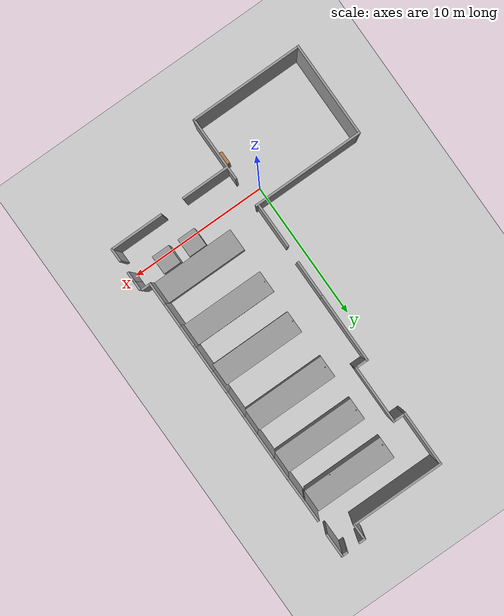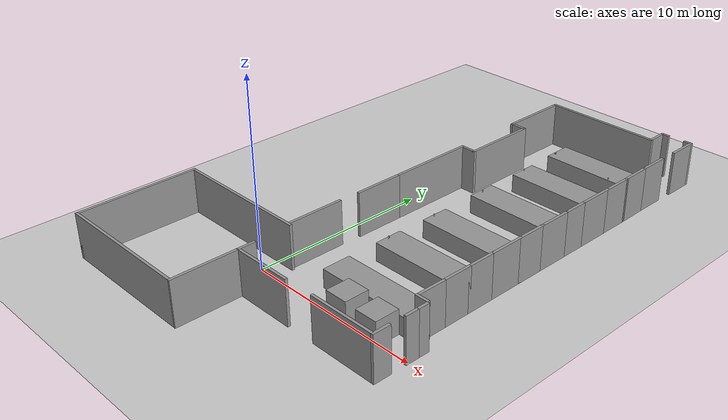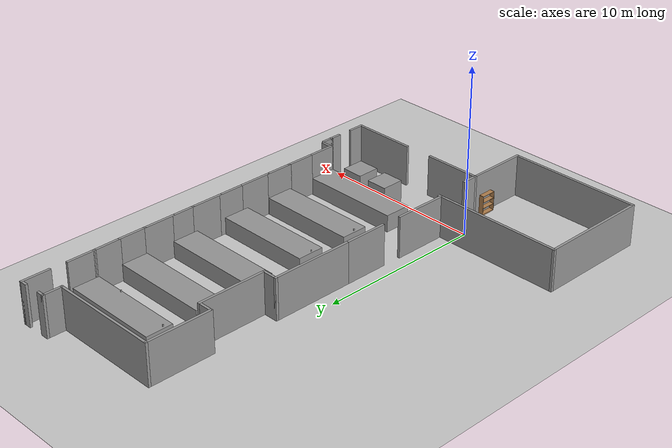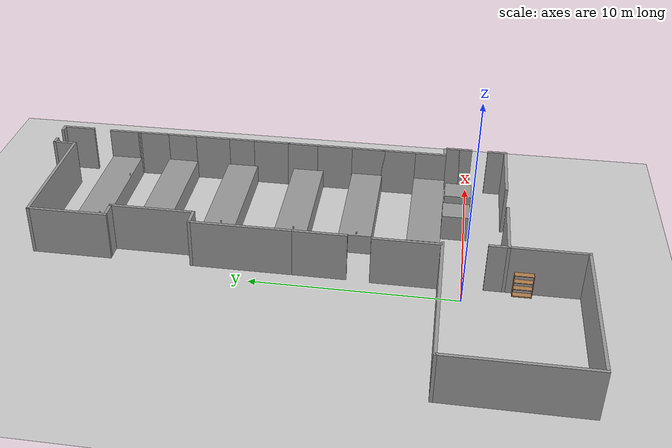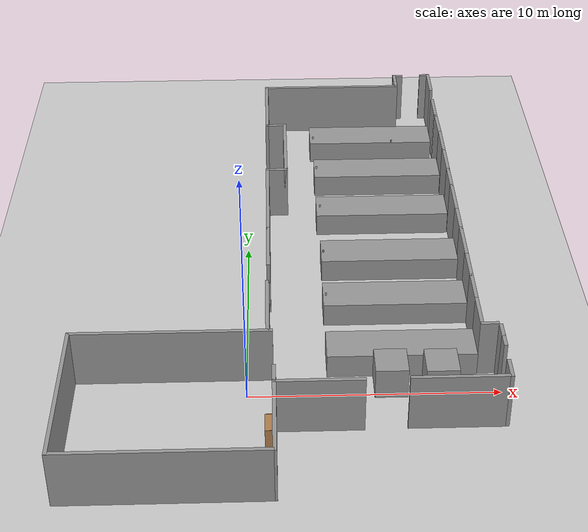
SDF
<sdf version="1.6">
 <world name="default">
  <light name="sun" type="directional">
   <pose>0 0 10 0 -0 0</pose>
   <diffuse>0.8 0.8 0.8 1</diffuse>
   <specular>0.2 0.2 0.2 1</specular>
   <attenuation>
    <range>1000</range>
    <constant>0.9</constant>
    <linear>0.01</linear>
    <quadratic>0.001</quadratic>
   </attenuation>
   <direction>-0.5 0.1 -0.9</direction>
  </light>
  <model name="ground_plane">
   <static>1</static>
   <link name="link">
    <collision name="collision">
     <geometry><plane><normal>0 0 1</normal><size>100 100</size></plane></geometry>
     <surface>
      <contact><collide_bitmask>65535</collide_bitmask></contact>
      <friction><ode><mu>100</mu><mu2>50</mu2></ode></friction>
     </surface>
    </collision>
    <visual name="visual">
     <cast_shadows>0</cast_shadows>
     <geometry><plane><normal>0 0 1</normal><size>100 100</size></plane></geometry>
     <material>
      <script><uri>file://media/materials/scripts/gazebo.material</uri><name>Gazebo/Grey</name></script>
     </material>
    </visual>
   </link>
  </model>
  <gravity>0 0 -9.8</gravity>
  <magnetic_field>6e-06 2.3e-05 -4.2e-05</magnetic_field>
  <atmosphere type="adiabatic"/>
  <physics name="default_physics" default="0" type="ode">
   <max_step_size>0.001</max_step_size>
   <real_time_factor>1</real_time_factor>
   <real_time_update_rate>1000</real_time_update_rate>
  </physics>
  <scene><ambient>0.4 0.4 0.4 1</ambient><background>0.7 0.7 0.7 1</background><shadows>1</shadows></scene>
  <audio><device>default</device></audio>
  <spherical_coordinates>
   <surface_model>EARTH_WGS84</surface_model>
   <latitude_deg>0</latitude_deg>
   <longitude_deg>0</longitude_deg>
   <elevation>0</elevation>
   <heading_deg>0</heading_deg>
  </spherical_coordinates>
  <model name="ecst_thermal_lab_frame_update">
   <pose>1.54422 8.26526 0 0 -0 0</pose>
   <link name="Wall_0">
    <collision name="Wall_0_Collision">
     <geometry><box><size>8 0.15 2.5</size></box></geometry>
     <pose>0 0 1.25 0 -0 0</pose>
    </collision>
    <visual name="Wall_0_Visual">
     <pose>0 0 1.25 0 -0 0</pose>
     <geometry><box><size>8 0.15 2.5</size></box></geometry>
     <material>
      <script><uri>file://media/materials/scripts/gazebo.material</uri><name>Gazebo/Grey</name></script>
      <ambient>0.333333 0.341176 0.32549 1</ambient>
     </material>
     <meta><layer>0</layer></meta>
    </visual>
    <pose>-4.49229 -7.18663 0 0 -0 3.14159</pose>
   </link>
   <link name="Wall_1">
    <collision name="Wall_1_Collision">
     <geometry><box><size>6.75 0.15 2.5</size></box></geometry>
     <pose>0 0 1.25 0 -0 0</pose>
    </collision>
    <visual name="Wall_1_Visual">
     <pose>0 0 1.25 0 -0 0</pose>
     <geometry><box><size>6.75 0.15 2.5</size></box></geometry>
     <material>
      <script><uri>file://media/materials/scripts/gazebo.material</uri><name>Gazebo/Grey</name></script>
      <ambient>0.333333 0.341176 0.32549 1</ambient>
     </material>
     <meta><layer>0</layer></meta>
    </visual>
    <pose>-8.41729 -10.4866 0 0 -0 -1.5708</pose>
   </link>
   <link name="Wall_10">
    <collision name="Wall_10_Collision">
     <geometry><box><size>3.75 0.15 2.5</size></box></geometry>
     <pose>0 0 1.25 0 -0 0</pose>
    </collision>
    <visual name="Wall_10_Visual">
     <pose>0 0 1.25 0 -0 0</pose>
     <geometry><box><size>3.75 0.15 2.5</size></box></geometry>
     <material>
      <script><uri>file://media/materials/scripts/gazebo.material</uri><name>Gazebo/Grey</name></script>
      <ambient>0.333333 0.341176 0.32549 1</ambient>
     </material>
     <meta><layer>0</layer></meta>
    </visual>
    <pose>6.47111 -10.1498 0 0 -0 0</pose>
   </link>
   <link name="Wall_12">
    <collision name="Wall_12_Collision">
     <geometry><box><size>0.75 0.15 2.5</size></box></geometry>
     <pose>0 0 1.25 0 -0 0</pose>
    </collision>
    <visual name="Wall_12_Visual">
     <pose>0 0 1.25 0 -0 0</pose>
     <geometry><box><size>0.75 0.15 2.5</size></box></geometry>
     <material>
      <script><uri>file://media/materials/scripts/gazebo.material</uri><name>Gazebo/Grey</name></script>
      <ambient>0.333333 0.341176 0.32549 1</ambient>
     </material>
     <meta><layer>0</layer></meta>
    </visual>
    <pose>8.41729 -8.04223 0 0 -0 -1.5708</pose>
   </link>
   <link name="Wall_17">
    <collision name="Wall_17_Collision">
     <geometry><box><size>1 0.15 2.5</size></box></geometry>
     <pose>0 0 1.25 0 -0 0</pose>
    </collision>
    <visual name="Wall_17_Visual">
     <pose>0 0 1.25 0 -0 0</pose>
     <geometry><box><size>1 0.15 2.5</size></box></geometry>
     <material>
      <script><uri>file://media/materials/scripts/gazebo.material</uri><name>Gazebo/Grey</name></script>
      <ambient>0.333333 0.341176 0.32549 1</ambient>
     </material>
     <meta><layer>0</layer></meta>
    </visual>
    <pose>8.39378 -9.72627 0 0 -0 -1.5708</pose>
   </link>
   <link name="Wall_2">
    <collision name="Wall_2_Collision">
     <geometry><box><size>8 0.15 2.5</size></box></geometry>
     <pose>0 0 1.25 0 -0 0</pose>
    </collision>
    <visual name="Wall_2_Visual">
     <pose>0 0 1.25 0 -0 0</pose>
     <geometry><box><size>8 0.15 2.5</size></box></geometry>
     <material>
      <script><uri>file://media/materials/scripts/gazebo.material</uri><name>Gazebo/Grey</name></script>
      <ambient>0.333333 0.341176 0.32549 1</ambient>
     </material>
     <meta><layer>0</layer></meta>
    </visual>
    <pose>-4.49229 -13.7866 0 0 -0 0</pose>
   </link>
   <link name="Wall_24">
    <collision name="Wall_24_Collision">
     <geometry><box><size>0.75 0.15 2.5</size></box></geometry>
     <pose>0 0 1.25 0 -0 0</pose>
    </collision>
    <visual name="Wall_24_Visual">
     <pose>0 0 1.25 0 -0 0</pose>
     <geometry><box><size>0.75 0.15 2.5</size></box></geometry>
     <material>
      <script><uri>file://media/materials/scripts/gazebo.material</uri><name>Gazebo/Grey</name></script>
      <ambient>0.333333 0.341176 0.32549 1</ambient>
     </material>
     <meta><layer>0</layer></meta>
    </visual>
    <pose>8.41729 -7.44223 0 0 -0 1.5708</pose>
   </link>
   <link name="Wall_39">
    <collision name="Wall_39_Collision">
     <geometry><box><size>1.75 0.15 2.5</size></box></geometry>
     <pose>0 0 1.25 0 -0 0</pose>
    </collision>
    <visual name="Wall_39_Visual">
     <pose>0 0 1.25 0 -0 0</pose>
     <geometry><box><size>1.75 0.15 2.5</size></box></geometry>
     <material>
      <script><uri>file://media/materials/scripts/gazebo.material</uri><name>Gazebo/Grey</name></script>
      <ambient>1 1 1 1</ambient>
     </material>
     <meta><layer>0</layer></meta>
    </visual>
    <pose>7.69144 -4.60777 0 0 -0 -1.5708</pose>
   </link>
   <link name="Wall_40">
    <collision name="Wall_40_Collision">
     <geometry><box><size>1.75 0.15 2.5</size></box></geometry>
     <pose>0 0 1.25 0 -0 0</pose>
    </collision>
    <visual name="Wall_40_Visual">
     <pose>0 0 1.25 0 -0 0</pose>
     <geometry><box><size>1.75 0.15 2.5</size></box></geometry>
     <material>
      <script><uri>file://media/materials/scripts/gazebo.material</uri><name>Gazebo/Grey</name></script>
      <ambient>0.333333 0.341176 0.32549 1</ambient>
     </material>
     <meta><layer>0</layer></meta>
    </visual>
    <pose>7.69144 -6.20777 0 0 -0 -1.5708</pose>
   </link>
   <link name="Wall_42">
    <collision name="Wall_42_Collision">
     <geometry><box><size>1.75 0.15 2.5</size></box></geometry>
     <pose>0 0 1.25 0 -0 0</pose>
    </collision>
    <visual name="Wall_42_Visual">
     <pose>0 0 1.25 0 -0 0</pose>
     <geometry><box><size>1.75 0.15 2.5</size></box></geometry>
     <material>
      <script><uri>file://media/materials/scripts/gazebo.material</uri><name>Gazebo/Grey</name></script>
      <ambient>0.333333 0.341176 0.32549 1</ambient>
     </material>
     <meta><layer>0</layer></meta>
    </visual>
    <pose>7.69144 -3.00777 0 0 -0 1.5708</pose>
   </link>
   <link name="Wall_43">
    <collision name="Wall_43_Collision">
     <geometry><box><size>2 0.15 2.5</size></box></geometry>
     <pose>0 0 1.25 0 -0 0</pose>
    </collision>
    <visual name="Wall_43_Visual">
     <pose>0 0 1.25 0 -0 0</pose>
     <geometry><box><size>2 0.15 2.5</size></box></geometry>
     <material>
      <script><uri>file://media/materials/scripts/gazebo.material</uri><name>Gazebo/Grey</name></script>
      <ambient>1 1 1 1</ambient>
     </material>
     <meta><layer>0</layer></meta>
    </visual>
    <pose>7.69144 -1.28277 0 0 -0 1.5708</pose>
   </link>
   <link name="Wall_44">
    <collision name="Wall_44_Collision">
     <geometry><box><size>1.75 0.15 2.5</size></box></geometry>
     <pose>0 0 1.25 0 -0 0</pose>
    </collision>
    <visual name="Wall_44_Visual">
     <pose>0 0 1.25 0 -0 0</pose>
     <geometry><box><size>1.75 0.15 2.5</size></box></geometry>
     <material>
      <script><uri>file://media/materials/scripts/gazebo.material</uri><name>Gazebo/Grey</name></script>
      <ambient>0.333333 0.341176 0.32549 1</ambient>
     </material>
     <meta><layer>0</layer></meta>
    </visual>
    <pose>7.69144 0.442234 0 0 -0 1.5708</pose>
   </link>
   <link name="Wall_46">
    <collision name="Wall_46_Collision">
     <geometry><box><size>2 0.15 2.5</size></box></geometry>
     <pose>0 0 1.25 0 -0 0</pose>
    </collision>
    <visual name="Wall_46_Visual">
     <pose>0 0 1.25 0 -0 0</pose>
     <geometry><box><size>2 0.15 2.5</size></box></geometry>
     <material>
      <script><uri>file://media/materials/scripts/gazebo.material</uri><name>Gazebo/Grey</name></script>
      <ambient>1 1 1 1</ambient>
     </material>
     <meta><layer>0</layer></meta>
    </visual>
    <pose>7.69144 2.16723 0 0 -0 1.5708</pose>
   </link>
   <link name="Wall_47">
    <collision name="Wall_47_Collision">
     <geometry><box><size>1.5 0.15 2.5</size></box></geometry>
     <pose>0 0 1.25 0 -0 0</pose>
    </collision>
    <visual name="Wall_47_Visual">
     <pose>0 0 1.25 0 -0 0</pose>
     <geometry><box><size>1.5 0.15 2.5</size></box></geometry>
     <material>
      <script><uri>file://media/materials/scripts/gazebo.material</uri><name>Gazebo/Grey</name></script>
      <ambient>0.333333 0.341176 0.32549 1</ambient>
     </material>
     <meta><layer>0</layer></meta>
    </visual>
    <pose>7.69144 3.76723 0 0 -0 1.5708</pose>
   </link>
   <link name="Wall_48">
    <collision name="Wall_48_Collision">
     <geometry><box><size>2 0.15 2.5</size></box></geometry>
     <pose>0 0 1.25 0 -0 0</pose>
    </collision>
    <visual name="Wall_48_Visual">
     <pose>0 0 1.25 0 -0 0</pose>
     <geometry><box><size>2 0.15 2.5</size></box></geometry>
     <material>
      <script><uri>file://media/materials/scripts/gazebo.material</uri><name>Gazebo/Grey</name></script>
      <ambient>1 1 1 1</ambient>
     </material>
     <meta><layer>0</layer></meta>
    </visual>
    <pose>7.69144 5.36723 0 0 -0 1.5708</pose>
   </link>
   <link name="Wall_49">
    <collision name="Wall_49_Collision">
     <geometry><box><size>1.75 0.15 2.5</size></box></geometry>
     <pose>0 0 1.25 0 -0 0</pose>
    </collision>
    <visual name="Wall_49_Visual">
     <pose>0 0 1.25 0 -0 0</pose>
     <geometry><box><size>1.75 0.15 2.5</size></box></geometry>
     <material>
      <script><uri>file://media/materials/scripts/gazebo.material</uri><name>Gazebo/Grey</name></script>
      <ambient>0.333333 0.341176 0.32549 1</ambient>
     </material>
     <meta><layer>0</layer></meta>
    </visual>
    <pose>7.69144 7.09223 0 0 -0 1.5708</pose>
   </link>
   <link name="Wall_5">
    <collision name="Wall_5_Collision">
     <geometry><box><size>1 0.15 2.5</size></box></geometry>
     <pose>0 0 1.25 0 -0 0</pose>
    </collision>
    <visual name="Wall_5_Visual">
     <pose>0 0 1.25 0 -0 0</pose>
     <geometry><box><size>1 0.15 2.5</size></box></geometry>
     <material>
      <script><uri>file://media/materials/scripts/gazebo.material</uri><name>Gazebo/Grey</name></script>
      <ambient>0.333333 0.341176 0.32549 1</ambient>
     </material>
     <meta><layer>0</layer></meta>
    </visual>
    <pose>-0.467362 -9.76165 0 0 -0 1.57098</pose>
   </link>
   <link name="Wall_50">
    <collision name="Wall_50_Collision">
     <geometry><box><size>1.79027 0.15 2.5</size></box></geometry>
     <pose>0 0 1.25 0 -0 0</pose>
    </collision>
    <visual name="Wall_50_Visual">
     <pose>0 0 1.25 0 -0 0</pose>
     <geometry><box><size>1.79027 0.15 2.5</size></box></geometry>
     <material>
      <script><uri>file://media/materials/scripts/gazebo.material</uri><name>Gazebo/Grey</name></script>
      <ambient>1 1 1 1</ambient>
     </material>
     <meta><layer>0</layer></meta>
    </visual>
    <pose>7.67644 8.71223 0 0 -0 1.58909</pose>
   </link>
   <link name="Wall_51">
    <collision name="Wall_51_Collision">
     <geometry><box><size>1.74 0.15 2.5</size></box></geometry>
     <pose>0 0 1.25 0 -0 0</pose>
    </collision>
    <visual name="Wall_51_Visual">
     <pose>0 0 1.25 0 -0 0</pose>
     <geometry><box><size>1.74 0.15 2.5</size></box></geometry>
     <material>
      <script><uri>file://media/materials/scripts/gazebo.material</uri><name>Gazebo/Grey</name></script>
      <ambient>0.333333 0.341176 0.32549 1</ambient>
     </material>
     <meta><layer>0</layer></meta>
    </visual>
    <pose>7.66144 10.3172 0 0 -0 1.5708</pose>
   </link>
   <link name="Wall_55">
    <collision name="Wall_55_Collision">
     <geometry><box><size>1.75 0.15 2.5</size></box></geometry>
     <pose>0 0 1.25 0 -0 0</pose>
    </collision>
    <visual name="Wall_55_Visual">
     <pose>0 0 1.25 0 -0 0</pose>
     <geometry><box><size>1.75 0.15 2.5</size></box></geometry>
     <material>
      <script><uri>file://media/materials/scripts/gazebo.material</uri><name>Gazebo/Grey</name></script>
      <ambient>0.333333 0.341176 0.32549 1</ambient>
     </material>
     <meta><layer>0</layer></meta>
    </visual>
    <pose>7.7071 12.9866 0 0 -0 1.5708</pose>
   </link>
   <link name="Wall_56">
    <collision name="Wall_56_Collision">
     <geometry><box><size>0.5 0.15 2.5</size></box></geometry>
     <pose>0 0 1.25 0 -0 0</pose>
    </collision>
    <visual name="Wall_56_Visual">
     <pose>0 0 1.25 0 -0 0</pose>
     <geometry><box><size>0.5 0.15 2.5</size></box></geometry>
     <material>
      <script><uri>file://media/materials/scripts/gazebo.material</uri><name>Gazebo/Grey</name></script>
      <ambient>0.333333 0.341176 0.32549 1</ambient>
     </material>
     <meta><layer>0</layer></meta>
    </visual>
    <pose>7.5321 13.7866 0 0 -0 3.14159</pose>
   </link>
   <link name="Wall_58">
    <collision name="Wall_58_Collision">
     <geometry><box><size>0.5 0.15 2.5</size></box></geometry>
     <pose>0 0 1.25 0 -0 0</pose>
    </collision>
    <visual name="Wall_58_Visual">
     <pose>0 0 1.25 0 -0 0</pose>
     <geometry><box><size>0.5 0.15 2.5</size></box></geometry>
     <material>
      <script><uri>file://media/materials/scripts/gazebo.material</uri><name>Gazebo/Grey</name></script>
      <ambient>0.333333 0.341176 0.32549 1</ambient>
     </material>
     <meta><layer>0</layer></meta>
    </visual>
    <pose>6.1329 13.7379 0 0 -0 3.14159</pose>
   </link>
   <link name="Wall_59">
    <collision name="Wall_59_Collision">
     <geometry><box><size>1.25 0.15 2.5</size></box></geometry>
     <pose>0 0 1.25 0 -0 0</pose>
    </collision>
    <visual name="Wall_59_Visual">
     <pose>0 0 1.25 0 -0 0</pose>
     <geometry><box><size>1.25 0.15 2.5</size></box></geometry>
     <material>
      <script><uri>file://media/materials/scripts/gazebo.material</uri><name>Gazebo/Grey</name></script>
      <ambient>0.333333 0.341176 0.32549 1</ambient>
     </material>
     <meta><layer>0</layer></meta>
    </visual>
    <pose>5.9579 13.1879 0 0 -0 -1.5708</pose>
   </link>
   <link name="Wall_60">
    <collision name="Wall_60_Collision">
     <geometry><box><size>6.75 0.15 2.5</size></box></geometry>
     <pose>0 0 1.25 0 -0 0</pose>
    </collision>
    <visual name="Wall_60_Visual">
     <pose>0 0 1.25 0 -0 0</pose>
     <geometry><box><size>6.75 0.15 2.5</size></box></geometry>
     <material>
      <script><uri>file://media/materials/scripts/gazebo.material</uri><name>Gazebo/Grey</name></script>
      <ambient>0.333333 0.341176 0.32549 1</ambient>
     </material>
     <meta><layer>0</layer></meta>
    </visual>
    <pose>2.6579 12.6379 0 0 -0 3.14159</pose>
   </link>
   <link name="Wall_61">
    <collision name="Wall_61_Collision">
     <geometry><box><size>4 0.15 2.5</size></box></geometry>
     <pose>0 0 1.25 0 -0 0</pose>
    </collision>
    <visual name="Wall_61_Visual">
     <pose>0 0 1.25 0 -0 0</pose>
     <geometry><box><size>4 0.15 2.5</size></box></geometry>
     <material>
      <script><uri>file://media/materials/scripts/gazebo.material</uri><name>Gazebo/Grey</name></script>
      <ambient>0.333333 0.341176 0.32549 1</ambient>
     </material>
     <meta><layer>0</layer></meta>
    </visual>
    <pose>-0.642102 10.7129 0 0 -0 -1.5708</pose>
   </link>
   <link name="Wall_62">
    <collision name="Wall_62_Collision">
     <geometry><box><size>1 0.15 2.5</size></box></geometry>
     <pose>0 0 1.25 0 -0 0</pose>
    </collision>
    <visual name="Wall_62_Visual">
     <pose>0 0 1.25 0 -0 0</pose>
     <geometry><box><size>1 0.15 2.5</size></box></geometry>
     <material>
      <script><uri>file://media/materials/scripts/gazebo.material</uri><name>Gazebo/Grey</name></script>
      <ambient>0.333333 0.341176 0.32549 1</ambient>
     </material>
     <meta><layer>0</layer></meta>
    </visual>
    <pose>-0.217102 8.78792 0 0 -0 0</pose>
   </link>
   <link name="Wall_63">
    <collision name="Wall_63_Collision">
     <geometry><box><size>4.25 0.15 2.5</size></box></geometry>
     <pose>0 0 1.25 0 -0 0</pose>
    </collision>
    <visual name="Wall_63_Visual">
     <pose>0 0 1.25 0 -0 0</pose>
     <geometry><box><size>4.25 0.15 2.5</size></box></geometry>
     <material>
      <script><uri>file://media/materials/scripts/gazebo.material</uri><name>Gazebo/Grey</name></script>
      <ambient>0.333333 0.341176 0.32549 1</ambient>
     </material>
     <meta><layer>0</layer></meta>
    </visual>
    <pose>0.207898 6.73792 0 0 -0 -1.5708</pose>
   </link>
   <link name="Wall_64">
    <collision name="Wall_64_Collision">
     <geometry><box><size>1 0.15 2.5</size></box></geometry>
     <pose>0 0 1.25 0 -0 0</pose>
    </collision>
    <visual name="Wall_64_Visual">
     <pose>0 0 1.25 0 -0 0</pose>
     <geometry><box><size>1 0.15 2.5</size></box></geometry>
     <material>
      <script><uri>file://media/materials/scripts/gazebo.material</uri><name>Gazebo/Grey</name></script>
      <ambient>0.333333 0.341176 0.32549 1</ambient>
     </material>
     <meta><layer>0</layer></meta>
    </visual>
    <pose>-0.217102 4.68792 0 0 -0 3.14159</pose>
   </link>
   <link name="Wall_65">
    <collision name="Wall_65_Collision">
     <geometry><box><size>5 0.15 2.5</size></box></geometry>
     <pose>0 0 1.25 0 -0 0</pose>
    </collision>
    <visual name="Wall_65_Visual">
     <pose>0 0 1.25 0 -0 0</pose>
     <geometry><box><size>5 0.15 2.5</size></box></geometry>
     <material>
      <script><uri>file://media/materials/scripts/gazebo.material</uri><name>Gazebo/Grey</name></script>
      <ambient>0.333333 0.341176 0.32549 1</ambient>
     </material>
     <meta><layer>0</layer></meta>
    </visual>
    <pose>-0.642102 2.26292 0 0 -0 -1.5708</pose>
   </link>
   <link name="Wall_66">
    <collision name="Wall_66_Collision">
     <geometry><box><size>2.75 0.15 2.5</size></box></geometry>
     <pose>0 0 1.25 0 -0 0</pose>
    </collision>
    <visual name="Wall_66_Visual">
     <pose>0 0 1.25 0 -0 0</pose>
     <geometry><box><size>2.75 0.15 2.5</size></box></geometry>
     <material>
      <script><uri>file://media/materials/scripts/gazebo.material</uri><name>Gazebo/Grey</name></script>
      <ambient>0 0 0 1</ambient>
     </material>
     <meta><layer>0</layer></meta>
    </visual>
    <pose>-0.642102 -1.46208 0 0 -0 -1.5708</pose>
   </link>
   <link name="Wall_69">
    <collision name="Wall_69_Collision">
     <geometry><box><size>3.25 0.15 2.5</size></box></geometry>
     <pose>0 0 1.25 0 -0 0</pose>
    </collision>
    <visual name="Wall_69_Visual">
     <pose>0 0 1.25 0 -0 0</pose>
     <geometry><box><size>3.25 0.15 2.5</size></box></geometry>
     <material>
      <script><uri>file://media/materials/scripts/gazebo.material</uri><name>Gazebo/Grey</name></script>
      <ambient>0 0 0 1</ambient>
     </material>
     <meta><layer>0</layer></meta>
    </visual>
    <pose>-0.693895 -5.56583 0 0 -0 -1.5708</pose>
   </link>
   <link name="Wall_7">
    <collision name="Wall_7_Collision">
     <geometry><box><size>3.5 0.15 2.5</size></box></geometry>
     <pose>0 0 1.25 0 -0 0</pose>
    </collision>
    <visual name="Wall_7_Visual">
     <pose>0 0 1.25 0 -0 0</pose>
     <geometry><box><size>3.5 0.15 2.5</size></box></geometry>
     <material>
      <script><uri>file://media/materials/scripts/gazebo.material</uri><name>Gazebo/Grey</name></script>
      <ambient>0.333333 0.341176 0.32549 1</ambient>
     </material>
     <meta><layer>0</layer></meta>
    </visual>
    <pose>1.20764 -10.1867 0 0 -0 -1.4e-05</pose>
   </link>
   <link name="Wall_75">
    <collision name="Wall_75_Collision">
     <geometry><box><size>0.75 0.15 2.5</size></box></geometry>
     <pose>0 0 1.25 0 -0 0</pose>
    </collision>
    <visual name="Wall_75_Visual">
     <pose>0 0 1.25 0 -0 0</pose>
     <geometry><box><size>0.75 0.15 2.5</size></box></geometry>
     <material>
      <script><uri>file://media/materials/scripts/gazebo.material</uri><name>Gazebo/Grey</name></script>
      <ambient>0.333333 0.341176 0.32549 1</ambient>
     </material>
     <meta><layer>0</layer></meta>
    </visual>
    <pose>7.99144 -7.00777 0 0 -0 0</pose>
   </link>
   <link name="Wall_82">
    <collision name="Wall_82_Collision">
     <geometry><box><size>3.75 0.15 2.5</size></box></geometry>
     <pose>0 0 1.25 0 -0 0</pose>
    </collision>
    <visual name="Wall_82_Visual">
     <pose>0 0 1.25 0 -0 0</pose>
     <geometry><box><size>3.75 0.15 2.5</size></box></geometry>
     <material>
      <script><uri>file://media/materials/scripts/gazebo.material</uri><name>Gazebo/Grey</name></script>
      <ambient>0.333333 0.341176 0.32549 1</ambient>
     </material>
     <meta><layer>0</layer></meta>
    </visual>
    <pose>-0.467286 -11.9866 0 0 -0 -1.5708</pose>
   </link>
   <static>1</static>
  </model>
  <model name="Thermal_Lab_Table_2">
   <link name="link">
    <inertial>
     <mass>14.3937</mass>
     <inertia><ixx>5.77164</ixx><ixy>0</ixy><ixz>0</ixz><iyy>45.8633</iyy><iyz>0</iyz><izz>46.3266</izz></inertia>
    </inertial>
    <pose>-2.72392 0.469528 0.259904 0 -0 0</pose>
    <visual name="visual">
     <geometry><box><size>6.00195 1.61214 1.48755</size></box></geometry>
     <material>
      <script><name>Gazebo/Grey</name><uri>file://media/materials/scripts/gazebo.material</uri></script>
     </material>
    </visual>
    <collision name="collision">
     <geometry><box><size>6.00195 1.61214 1.48755</size></box></geometry>
     <surface>
      <friction>
       <ode><mu>1</mu><mu2>1</mu2><fdir1>0 0 0</fdir1><slip1>0</slip1><slip2>0</slip2></ode>
       <torsional>
        <coefficient>1</coefficient>
        <patch_radius>0</patch_radius>
        <surface_radius>0</surface_radius>
        <use_patch_radius>1</use_patch_radius>
        <ode><slip>0</slip></ode>
       </torsional>
      </friction>
      <bounce><restitution_coefficient>0</restitution_coefficient><threshold>1e+06</threshold></bounce>
      <contact>
       <collide_without_contact>0</collide_without_contact>
       <collide_without_contact_bitmask>1</collide_without_contact_bitmask>
       <collide_bitmask>1</collide_bitmask>
       <ode>
        <soft_cfm>0</soft_cfm>
        <soft_erp>0.2</soft_erp>
        <kp>1e+13</kp>
        <kd>1</kd>
        <max_vel>0.01</max_vel>
        <min_depth>0</min_depth>
       </ode>
       <bullet>
        <split_impulse>1</split_impulse>
        <split_impulse_penetration_threshold>-0.01</split_impulse_penetration_threshold>
        <soft_cfm>0</soft_cfm>
        <soft_erp>0.2</soft_erp>
        <kp>1e+13</kp>
        <kd>1</kd>
       </bullet>
      </contact>
     </surface>
    </collision>
   </link>
   <static>1</static>
   <pose>8.90167 1.50886 0 0 -0 0</pose>
  </model>
  <model name="Thermal_Lab_Table_2_0">
   <link name="link">
    <inertial>
     <mass>14.3937</mass>
     <inertia><ixx>5.77164</ixx><ixy>0</ixy><ixz>0</ixz><iyy>45.8633</iyy><iyz>0</iyz><izz>46.3266</izz></inertia>
    </inertial>
    <pose>-2.72392 0.469528 0.259904 0 -0 0</pose>
    <visual name="visual">
     <geometry><box><size>6.00195 1.61214 1.48755</size></box></geometry>
     <material>
      <script><name>Gazebo/Grey</name><uri>file://media/materials/scripts/gazebo.material</uri></script>
     </material>
    </visual>
    <collision name="collision">
     <geometry><box><size>6.00195 1.61214 1.48755</size></box></geometry>
     <surface>
      <friction>
       <ode><mu>1</mu><mu2>1</mu2><fdir1>0 0 0</fdir1><slip1>0</slip1><slip2>0</slip2></ode>
       <torsional>
        <coefficient>1</coefficient>
        <patch_radius>0</patch_radius>
        <surface_radius>0</surface_radius>
        <use_patch_radius>1</use_patch_radius>
        <ode><slip>0</slip></ode>
       </torsional>
      </friction>
      <bounce><restitution_coefficient>0</restitution_coefficient><threshold>1e+06</threshold></bounce>
      <contact>
       <collide_without_contact>0</collide_without_contact>
       <collide_without_contact_bitmask>1</collide_without_contact_bitmask>
       <collide_bitmask>1</collide_bitmask>
       <ode>
        <soft_cfm>0</soft_cfm>
        <soft_erp>0.2</soft_erp>
        <kp>1e+13</kp>
        <kd>1</kd>
        <max_vel>0.01</max_vel>
        <min_depth>0</min_depth>
       </ode>
       <bullet>
        <split_impulse>1</split_impulse>
        <split_impulse_penetration_threshold>-0.01</split_impulse_penetration_threshold>
        <soft_cfm>0</soft_cfm>
        <soft_erp>0.2</soft_erp>
        <kp>1e+13</kp>
        <kd>1</kd>
       </bullet>
      </contact>
     </surface>
    </collision>
   </link>
   <static>1</static>
   <pose>8.89859 4.82939 0 0 -0 0</pose>
  </model>
  <model name="Thermal_Lab_Table_2_1">
   <link name="link">
    <inertial>
     <mass>14.3937</mass>
     <inertia><ixx>5.77164</ixx><ixy>0</ixy><ixz>0</ixz><iyy>45.8633</iyy><iyz>0</iyz><izz>46.3266</izz></inertia>
    </inertial>
    <pose>-2.72392 0.469528 0.259904 0 -0 0</pose>
    <visual name="visual">
     <geometry><box><size>6.00195 1.61214 1.48755</size></box></geometry>
     <material>
      <script><name>Gazebo/Grey</name><uri>file://media/materials/scripts/gazebo.material</uri></script>
     </material>
    </visual>
    <collision name="collision">
     <geometry><box><size>6.00195 1.61214 1.48755</size></box></geometry>
     <surface>
      <friction>
       <ode><mu>1</mu><mu2>1</mu2><fdir1>0 0 0</fdir1><slip1>0</slip1><slip2>0</slip2></ode>
       <torsional>
        <coefficient>1</coefficient>
        <patch_radius>0</patch_radius>
        <surface_radius>0</surface_radius>
        <use_patch_radius>1</use_patch_radius>
        <ode><slip>0</slip></ode>
       </torsional>
      </friction>
      <bounce><restitution_coefficient>0</restitution_coefficient><threshold>1e+06</threshold></bounce>
      <contact>
       <collide_without_contact>0</collide_without_contact>
       <collide_without_contact_bitmask>1</collide_without_contact_bitmask>
       <collide_bitmask>1</collide_bitmask>
       <ode>
        <soft_cfm>0</soft_cfm>
        <soft_erp>0.2</soft_erp>
        <kp>1e+13</kp>
        <kd>1</kd>
        <max_vel>0.01</max_vel>
        <min_depth>0</min_depth>
       </ode>
       <bullet>
        <split_impulse>1</split_impulse>
        <split_impulse_penetration_threshold>-0.01</split_impulse_penetration_threshold>
        <soft_cfm>0</soft_cfm>
        <soft_erp>0.2</soft_erp>
        <kp>1e+13</kp>
        <kd>1</kd>
       </bullet>
      </contact>
     </surface>
    </collision>
   </link>
   <static>1</static>
   <pose>8.93333 7.99657 0 0 -0 0</pose>
  </model>
  <model name="Thermal_Lab_Table_2_2">
   <link name="link">
    <inertial>
     <mass>14.3937</mass>
     <inertia><ixx>5.77164</ixx><ixy>0</ixy><ixz>0</ixz><iyy>45.8633</iyy><iyz>0</iyz><izz>46.3266</izz></inertia>
    </inertial>
    <pose>-2.72392 0.469528 0.259904 0 -0 0</pose>
    <visual name="visual">
     <geometry><box><size>6.00195 1.61214 1.48755</size></box></geometry>
     <material>
      <script><name>Gazebo/Grey</name><uri>file://media/materials/scripts/gazebo.material</uri></script>
     </material>
    </visual>
    <collision name="collision">
     <geometry><box><size>6.00195 1.61214 1.48755</size></box></geometry>
     <surface>
      <friction>
       <ode><mu>1</mu><mu2>1</mu2><fdir1>0 0 0</fdir1><slip1>0</slip1><slip2>0</slip2></ode>
       <torsional>
        <coefficient>1</coefficient>
        <patch_radius>0</patch_radius>
        <surface_radius>0</surface_radius>
        <use_patch_radius>1</use_patch_radius>
        <ode><slip>0</slip></ode>
       </torsional>
      </friction>
      <bounce><restitution_coefficient>0</restitution_coefficient><threshold>1e+06</threshold></bounce>
      <contact>
       <collide_without_contact>0</collide_without_contact>
       <collide_without_contact_bitmask>1</collide_without_contact_bitmask>
       <collide_bitmask>1</collide_bitmask>
       <ode>
        <soft_cfm>0</soft_cfm>
        <soft_erp>0.2</soft_erp>
        <kp>1e+13</kp>
        <kd>1</kd>
        <max_vel>0.01</max_vel>
        <min_depth>0</min_depth>
       </ode>
       <bullet>
        <split_impulse>1</split_impulse>
        <split_impulse_penetration_threshold>-0.01</split_impulse_penetration_threshold>
        <soft_cfm>0</soft_cfm>
        <soft_erp>0.2</soft_erp>
        <kp>1e+13</kp>
        <kd>1</kd>
       </bullet>
      </contact>
     </surface>
    </collision>
   </link>
   <static>1</static>
   <pose>8.84613 11.5912 0 0 -0 0</pose>
  </model>
  <model name="Thermal_Lab_Table_2_3">
   <link name="link">
    <inertial>
     <mass>14.3937</mass>
     <inertia><ixx>5.77164</ixx><ixy>0</ixy><ixz>0</ixz><iyy>45.8633</iyy><iyz>0</iyz><izz>46.3266</izz></inertia>
    </inertial>
    <pose>-2.72392 0.469528 0.259904 0 -0 0</pose>
    <visual name="visual">
     <geometry><box><size>6.00195 1.61214 1.48755</size></box></geometry>
     <material>
      <script><name>Gazebo/Grey</name><uri>file://media/materials/scripts/gazebo.material</uri></script>
     </material>
    </visual>
    <collision name="collision">
     <geometry><box><size>6.00195 1.61214 1.48755</size></box></geometry>
     <surface>
      <friction>
       <ode><mu>1</mu><mu2>1</mu2><fdir1>0 0 0</fdir1><slip1>0</slip1><slip2>0</slip2></ode>
       <torsional>
        <coefficient>1</coefficient>
        <patch_radius>0</patch_radius>
        <surface_radius>0</surface_radius>
        <use_patch_radius>1</use_patch_radius>
        <ode><slip>0</slip></ode>
       </torsional>
      </friction>
      <bounce><restitution_coefficient>0</restitution_coefficient><threshold>1e+06</threshold></bounce>
      <contact>
       <collide_without_contact>0</collide_without_contact>
       <collide_without_contact_bitmask>1</collide_without_contact_bitmask>
       <collide_bitmask>1</collide_bitmask>
       <ode>
        <soft_cfm>0</soft_cfm>
        <soft_erp>0.2</soft_erp>
        <kp>1e+13</kp>
        <kd>1</kd>
        <max_vel>0.01</max_vel>
        <min_depth>0</min_depth>
       </ode>
       <bullet>
        <split_impulse>1</split_impulse>
        <split_impulse_penetration_threshold>-0.01</split_impulse_penetration_threshold>
        <soft_cfm>0</soft_cfm>
        <soft_erp>0.2</soft_erp>
        <kp>1e+13</kp>
        <kd>1</kd>
       </bullet>
      </contact>
     </surface>
    </collision>
   </link>
   <static>1</static>
   <pose>8.86012 14.9344 0 0 -0 0</pose>
  </model>
  <model name="Thermal_Lab_Table_2_5">
   <link name="link">
    <inertial>
     <mass>14.3937</mass>
     <inertia><ixx>5.77164</ixx><ixy>0</ixy><ixz>0</ixz><iyy>45.8633</iyy><iyz>0</iyz><izz>46.3266</izz></inertia>
    </inertial>
    <pose>-2.72392 0.469528 0.259904 0 -0 0</pose>
    <visual name="visual">
     <geometry><box><size>6.00195 1.61214 1.48755</size></box></geometry>
     <material>
      <script><name>Gazebo/Grey</name><uri>file://media/materials/scripts/gazebo.material</uri></script>
     </material>
    </visual>
    <collision name="collision">
     <geometry><box><size>6.00195 1.61214 1.48755</size></box></geometry>
     <surface>
      <friction>
       <ode><mu>1</mu><mu2>1</mu2><fdir1>0 0 0</fdir1><slip1>0</slip1><slip2>0</slip2></ode>
       <torsional>
        <coefficient>1</coefficient>
        <patch_radius>0</patch_radius>
        <surface_radius>0</surface_radius>
        <use_patch_radius>1</use_patch_radius>
        <ode><slip>0</slip></ode>
       </torsional>
      </friction>
      <bounce><restitution_coefficient>0</restitution_coefficient><threshold>1e+06</threshold></bounce>
      <contact>
       <collide_without_contact>0</collide_without_contact>
       <collide_without_contact_bitmask>1</collide_without_contact_bitmask>
       <collide_bitmask>1</collide_bitmask>
       <ode>
        <soft_cfm>0</soft_cfm>
        <soft_erp>0.2</soft_erp>
        <kp>1e+13</kp>
        <kd>1</kd>
        <max_vel>0.01</max_vel>
        <min_depth>0</min_depth>
       </ode>
       <bullet>
        <split_impulse>1</split_impulse>
        <split_impulse_penetration_threshold>-0.01</split_impulse_penetration_threshold>
        <soft_cfm>0</soft_cfm>
        <soft_erp>0.2</soft_erp>
        <kp>1e+13</kp>
        <kd>1</kd>
       </bullet>
      </contact>
     </surface>
    </collision>
   </link>
   <static>1</static>
   <pose>8.73915 18.0886 0 0 -0 0</pose>
  </model>
  <model name="coke_can">
   <link name="link">
    <inertial>
     <pose>0 0 0.06 0 -0 0</pose>
     <mass>0.39</mass>
     <inertia>
      <ixx>0.00055575</ixx>
      <ixy>0</ixy>
      <ixz>0</ixz>
      <iyy>0.00055575</iyy>
      <iyz>0</iyz>
      <izz>0.0001755</izz>
     </inertia>
    </inertial>
    <collision name="collision">
     <pose>0.003937 0.004724 -0.18 0 -0 0</pose>
     <geometry><mesh><uri>model://coke_can/meshes/coke_can.dae</uri></mesh></geometry>
     <surface>
      <friction><ode><mu>1</mu><mu2>1</mu2></ode></friction>
      <contact><ode><kp>1e+07</kp><kd>1</kd><min_depth>0.001</min_depth><max_vel>0.1</max_vel></ode></contact>
     </surface>
    </collision>
    <visual name="visual">
     <pose>0.003937 0.004724 -0.18 0 -0 0</pose>
     <geometry><mesh><uri>model://coke_can/meshes/coke_can.dae</uri></mesh></geometry>
    </visual>
   </link>
   <pose>3.30134 5.22217 1.00111 -0.011208 0.004013 -0.001582</pose>
  </model>
  <model name="coke_can_0">
   <link name="link">
    <inertial>
     <pose>0 0 0.06 0 -0 0</pose>
     <mass>0.39</mass>
     <inertia>
      <ixx>0.00055575</ixx>
      <ixy>0</ixy>
      <ixz>0</ixz>
      <iyy>0.00055575</iyy>
      <iyz>0</iyz>
      <izz>0.0001755</izz>
     </inertia>
    </inertial>
    <collision name="collision">
     <pose>0.003937 0.004724 -0.18 0 -0 0</pose>
     <geometry><mesh><uri>model://coke_can/meshes/coke_can.dae</uri></mesh></geometry>
     <surface>
      <friction><ode><mu>1</mu><mu2>1</mu2></ode></friction>
      <contact><ode><kp>1e+07</kp><kd>1</kd><min_depth>0.001</min_depth><max_vel>0.1</max_vel></ode></contact>
     </surface>
    </collision>
    <visual name="visual">
     <pose>0.003937 0.004724 -0.18 0 -0 0</pose>
     <geometry><mesh><uri>model://coke_can/meshes/coke_can.dae</uri></mesh></geometry>
    </visual>
   </link>
   <pose>3.30776 8.35622 1.00039 0.00883 -0.037143 0.012679</pose>
  </model>
  <model name="coke_can_1">
   <link name="link">
    <inertial>
     <pose>0 0 0.06 0 -0 0</pose>
     <mass>0.39</mass>
     <inertia>
      <ixx>0.00055575</ixx>
      <ixy>0</ixy>
      <ixz>0</ixz>
      <iyy>0.00055575</iyy>
      <iyz>0</iyz>
      <izz>0.0001755</izz>
     </inertia>
    </inertial>
    <collision name="collision">
     <pose>0.003937 0.004724 -0.18 0 -0 0</pose>
     <geometry><mesh><uri>model://coke_can/meshes/coke_can.dae</uri></mesh></geometry>
     <surface>
      <friction><ode><mu>1</mu><mu2>1</mu2></ode></friction>
      <contact><ode><kp>1e+07</kp><kd>1</kd><min_depth>0.001</min_depth><max_vel>0.1</max_vel></ode></contact>
     </surface>
    </collision>
    <visual name="visual">
     <pose>0.003937 0.004724 -0.18 0 -0 0</pose>
     <geometry><mesh><uri>model://coke_can/meshes/coke_can.dae</uri></mesh></geometry>
    </visual>
   </link>
   <pose>3.29688 11.9955 1.00036 0.017545 -0.025671 -0.000932</pose>
  </model>
  <model name="coke_can_2">
   <link name="link">
    <inertial>
     <pose>0 0 0.06 0 -0 0</pose>
     <mass>0.39</mass>
     <inertia>
      <ixx>0.00055575</ixx>
      <ixy>0</ixy>
      <ixz>0</ixz>
      <iyy>0.00055575</iyy>
      <iyz>0</iyz>
      <izz>0.0001755</izz>
     </inertia>
    </inertial>
    <collision name="collision">
     <pose>0.003937 0.004724 -0.18 0 -0 0</pose>
     <geometry><mesh><uri>model://coke_can/meshes/coke_can.dae</uri></mesh></geometry>
     <surface>
      <friction><ode><mu>1</mu><mu2>1</mu2></ode></friction>
      <contact><ode><kp>1e+07</kp><kd>1</kd><min_depth>0.001</min_depth><max_vel>0.1</max_vel></ode></contact>
     </surface>
    </collision>
    <visual name="visual">
     <pose>0.003937 0.004724 -0.18 0 -0 0</pose>
     <geometry><mesh><uri>model://coke_can/meshes/coke_can.dae</uri></mesh></geometry>
    </visual>
   </link>
   <pose>3.25745 15.4107 1.001 0.004297 -0.024794 -0.00011</pose>
  </model>
  <model name="coke_can_3">
   <link name="link">
    <inertial>
     <pose>0 0 0.06 0 -0 0</pose>
     <mass>0.39</mass>
     <inertia>
      <ixx>0.00055575</ixx>
      <ixy>0</ixy>
      <ixz>0</ixz>
      <iyy>0.00055575</iyy>
      <iyz>0</iyz>
      <izz>0.0001755</izz>
     </inertia>
    </inertial>
    <collision name="collision">
     <pose>0.003937 0.004724 -0.18 0 -0 0</pose>
     <geometry><mesh><uri>model://coke_can/meshes/coke_can.dae</uri></mesh></geometry>
     <surface>
      <friction><ode><mu>1</mu><mu2>1</mu2></ode></friction>
      <contact><ode><kp>1e+07</kp><kd>1</kd><min_depth>0.001</min_depth><max_vel>0.1</max_vel></ode></contact>
     </surface>
    </collision>
    <visual name="visual">
     <pose>0.003937 0.004724 -0.18 0 -0 0</pose>
     <geometry><mesh><uri>model://coke_can/meshes/coke_can.dae</uri></mesh></geometry>
    </visual>
   </link>
   <pose>3.17467 18.226 1.00038 0.010427 -0.036085 0.000733</pose>
  </model>
  <model name="coke_can_4">
   <link name="link">
    <inertial>
     <pose>0 0 0.06 0 -0 0</pose>
     <mass>0.39</mass>
     <inertia>
      <ixx>0.00055575</ixx>
      <ixy>0</ixy>
      <ixz>0</ixz>
      <iyy>0.00055575</iyy>
      <iyz>0</iyz>
      <izz>0.0001755</izz>
     </inertia>
    </inertial>
    <collision name="collision">
     <pose>0.003937 0.004724 -0.18 0 -0 0</pose>
     <geometry><mesh><uri>model://coke_can/meshes/coke_can.dae</uri></mesh></geometry>
     <surface>
      <friction><ode><mu>1</mu><mu2>1</mu2></ode></friction>
      <contact><ode><kp>1e+07</kp><kd>1</kd><min_depth>0.001</min_depth><max_vel>0.1</max_vel></ode></contact>
     </surface>
    </collision>
    <visual name="visual">
     <pose>0.003937 0.004724 -0.18 0 -0 0</pose>
     <geometry><mesh><uri>model://coke_can/meshes/coke_can.dae</uri></mesh></geometry>
    </visual>
   </link>
   <pose>7.06509 17.8268 1.00039 0.010059 -0.036328 -0.000537</pose>
  </model>
  <model name="crate">
   <link name="link">
    <inertial>
     <mass>2.36098</mass>
     <inertia>
      <ixx>0.713886</ixx>
      <ixy>0</ixy>
      <ixz>0</ixz>
      <iyy>0.686399</iyy>
      <iyz>0</iyz>
      <izz>0.693948</izz>
     </inertia>
    </inertial>
    <pose>0.186991 0.034424 0.127035 0 -0 0</pose>
    <visual name="visual">
     <geometry><box><size>1.30142 1.35403 1.33979</size></box></geometry>
     <material>
      <script><name>Gazebo/Grey</name><uri>file://media/materials/scripts/gazebo.material</uri></script>
     </material>
    </visual>
    <collision name="collision">
     <geometry><box><size>1.30142 1.35403 1.33979</size></box></geometry>
     <surface>
      <friction>
       <ode><mu>1</mu><mu2>1</mu2><fdir1>0 0 0</fdir1><slip1>0</slip1><slip2>0</slip2></ode>
       <torsional>
        <coefficient>1</coefficient>
        <patch_radius>0</patch_radius>
        <surface_radius>0</surface_radius>
        <use_patch_radius>1</use_patch_radius>
        <ode><slip>0</slip></ode>
       </torsional>
      </friction>
      <bounce><restitution_coefficient>0</restitution_coefficient><threshold>1e+06</threshold></bounce>
      <contact>
       <collide_without_contact>0</collide_without_contact>
       <collide_without_contact_bitmask>1</collide_without_contact_bitmask>
       <collide_bitmask>1</collide_bitmask>
       <ode>
        <soft_cfm>0</soft_cfm>
        <soft_erp>0.2</soft_erp>
        <kp>1e+13</kp>
        <kd>1</kd>
        <max_vel>0.01</max_vel>
        <min_depth>0</min_depth>
       </ode>
       <bullet>
        <split_impulse>1</split_impulse>
        <split_impulse_penetration_threshold>-0.01</split_impulse_penetration_threshold>
        <soft_cfm>0</soft_cfm>
        <soft_erp>0.2</soft_erp>
        <kp>1e+13</kp>
        <kd>1</kd>
       </bullet>
      </contact>
     </surface>
    </collision>
   </link>
   <static>1</static>
   <pose>5.46999 0.451027 0.569058 0 -0 0</pose>
  </model>
  <model name="crate_0">
   <link name="link">
    <inertial>
     <mass>2.36098</mass>
     <inertia>
      <ixx>0.713886</ixx>
      <ixy>0</ixy>
      <ixz>0</ixz>
      <iyy>0.686399</iyy>
      <iyz>0</iyz>
      <izz>0.693948</izz>
     </inertia>
    </inertial>
    <pose>0.186991 0.034424 0.127035 0 -0 0</pose>
    <visual name="visual">
     <geometry><box><size>1.30142 1.35403 1.33979</size></box></geometry>
     <material>
      <script><name>Gazebo/Grey</name><uri>file://media/materials/scripts/gazebo.material</uri></script>
     </material>
    </visual>
    <collision name="collision">
     <geometry><box><size>1.30142 1.35403 1.33979</size></box></geometry>
     <surface>
      <friction>
       <ode><mu>1</mu><mu2>1</mu2><fdir1>0 0 0</fdir1><slip1>0</slip1><slip2>0</slip2></ode>
       <torsional>
        <coefficient>1</coefficient>
        <patch_radius>0</patch_radius>
        <surface_radius>0</surface_radius>
        <use_patch_radius>1</use_patch_radius>
        <ode><slip>0</slip></ode>
       </torsional>
      </friction>
      <bounce><restitution_coefficient>0</restitution_coefficient><threshold>1e+06</threshold></bounce>
      <contact>
       <collide_without_contact>0</collide_without_contact>
       <collide_without_contact_bitmask>1</collide_without_contact_bitmask>
       <collide_bitmask>1</collide_bitmask>
       <ode>
        <soft_cfm>0</soft_cfm>
        <soft_erp>0.2</soft_erp>
        <kp>1e+13</kp>
        <kd>1</kd>
        <max_vel>0.01</max_vel>
        <min_depth>0</min_depth>
       </ode>
       <bullet>
        <split_impulse>1</split_impulse>
        <split_impulse_penetration_threshold>-0.01</split_impulse_penetration_threshold>
        <soft_cfm>0</soft_cfm>
        <soft_erp>0.2</soft_erp>
        <kp>1e+13</kp>
        <kd>1</kd>
       </bullet>
      </contact>
     </surface>
    </collision>
   </link>
   <static>1</static>
   <pose>7.44903 0.403029 0.563786 0 -0 0</pose>
  </model>
  <model name="bookshelf">
   <static>1</static>
   <link name="link">
    <inertial><mass>1</mass></inertial>
    <collision name="back">
     <pose>0 0.005 0.6 0 -0 0</pose>
     <geometry><box><size>0.9 0.01 1.2</size></box></geometry>
    </collision>
    <visual name="visual1">
     <pose>0 0.005 0.6 0 -0 0</pose>
     <geometry><box><size>0.9 0.01 1.2</size></box></geometry>
     <material>
      <script><uri>file://media/materials/scripts/gazebo.material</uri><name>Gazebo/Wood</name></script>
     </material>
    </visual>
    <collision name="left_side">
     <pose>0.45 -0.195 0.6 0 -0 0</pose>
     <geometry><box><size>0.02 0.4 1.2</size></box></geometry>
    </collision>
    <visual name="visual2">
     <pose>0.45 -0.195 0.6 0 -0 0</pose>
     <geometry><box><size>0.02 0.4 1.2</size></box></geometry>
     <material>
      <script><uri>file://media/materials/scripts/gazebo.material</uri><name>Gazebo/Wood</name></script>
     </material>
    </visual>
    <collision name="right_side">
     <pose>-0.45 -0.195 0.6 0 -0 0</pose>
     <geometry><box><size>0.02 0.4 1.2</size></box></geometry>
    </collision>
    <visual name="visual3">
     <pose>-0.45 -0.195 0.6 0 -0 0</pose>
     <geometry><box><size>0.02 0.4 1.2</size></box></geometry>
     <material>
      <script><uri>file://media/materials/scripts/gazebo.material</uri><name>Gazebo/Wood</name></script>
     </material>
    </visual>
    <collision name="bottom">
     <pose>0 -0.195 0.03 0 -0 0</pose>
     <geometry><box><size>0.88 0.4 0.06</size></box></geometry>
    </collision>
    <visual name="visual4">
     <pose>0 -0.195 0.03 0 -0 0</pose>
     <geometry><box><size>0.88 0.4 0.06</size></box></geometry>
     <material>
      <script><uri>file://media/materials/scripts/gazebo.material</uri><name>Gazebo/Wood</name></script>
     </material>
    </visual>
    <collision name="top">
     <pose>0 -0.195 1.19 0 -0 0</pose>
     <geometry><box><size>0.88 0.4 0.02</size></box></geometry>
    </collision>
    <visual name="visual5">
     <pose>0 -0.195 1.19 0 -0 0</pose>
     <geometry><box><size>0.88 0.4 0.02</size></box></geometry>
     <material>
      <script><uri>file://media/materials/scripts/gazebo.material</uri><name>Gazebo/Wood</name></script>
     </material>
    </visual>
    <collision name="low_shelf">
     <pose>0 -0.195 0.43 0 -0 0</pose>
     <geometry><box><size>0.88 0.4 0.02</size></box></geometry>
    </collision>
    <visual name="visual6">
     <pose>0 -0.195 0.43 0 -0 0</pose>
     <geometry><box><size>0.88 0.4 0.02</size></box></geometry>
     <material>
      <script><uri>file://media/materials/scripts/gazebo.material</uri><name>Gazebo/Wood</name></script>
     </material>
    </visual>
    <collision name="high_shelf">
     <pose>0 -0.195 0.8 0 -0 0</pose>
     <geometry><box><size>0.88 0.4 0.02</size></box></geometry>
    </collision>
    <visual name="visual7">
     <pose>0 -0.195 0.8 0 -0 0</pose>
     <geometry><box><size>0.88 0.4 0.02</size></box></geometry>
     <material>
      <script><uri>file://media/materials/scripts/gazebo.material</uri><name>Gazebo/Wood</name></script>
     </material>
    </visual>
   </link>
   <pose>1.1061 -2.75934 0 0 0 -1.56847</pose>
  </model>
 </world>
</sdf>
